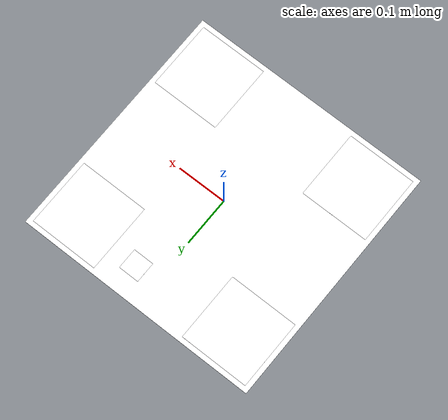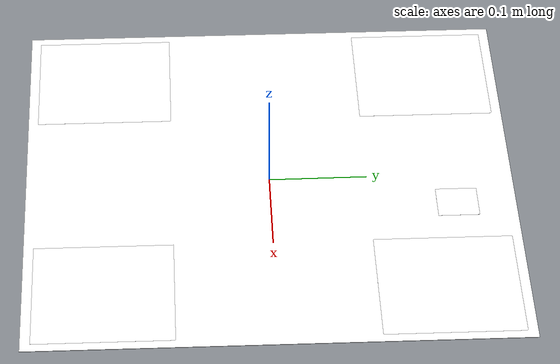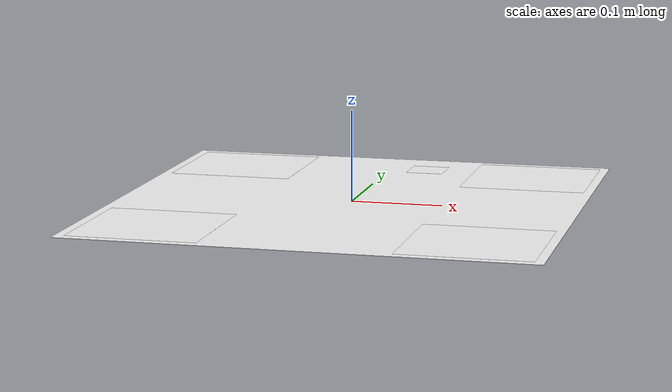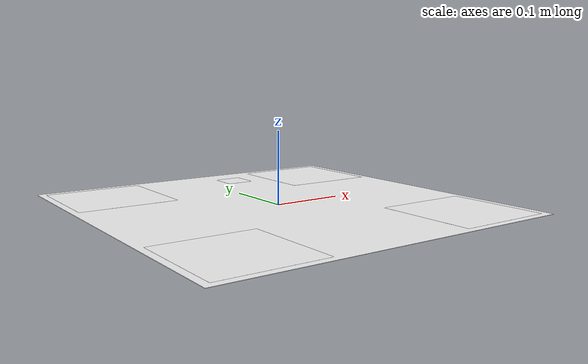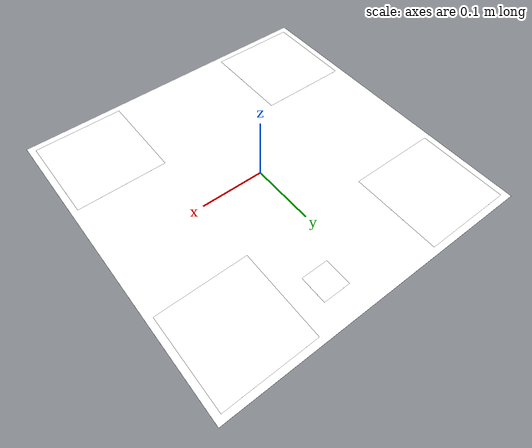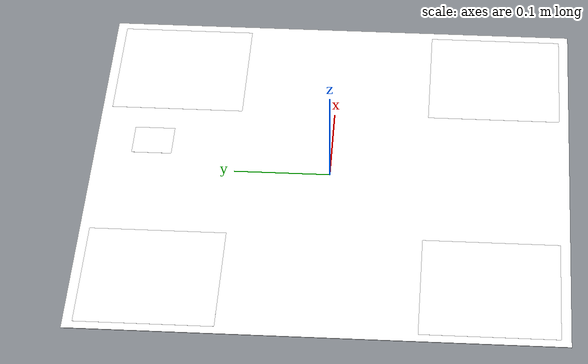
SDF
<?xml version="1.0" encoding="UTF-8"?>
<sdf version='1.9'>
  <model name='arucotag'>
    <static>true</static>
    <pose>0 0 0.001 0 0 0</pose>
    <link name='base'>
      <visual name='background_visual'>
        <geometry>
          <plane>
            <normal>0 0 1</normal>
            <size>0.5 0.5</size>
          </plane>
        </geometry>
        <material>
          <diffuse>1 1 1 1</diffuse>
          <specular>0.2 0.2 0.2 1</specular>
        </material>
      </visual>
      <visual name='tag_0_visual'>
        <pose>0.17 0.17 0.0002 0 0 0</pose>
        <geometry>
          <plane>
            <normal>0 0 1</normal>
            <size>0.14 0.14</size>
          </plane>
        </geometry>
        <material>
          <diffuse>1 1 1 1</diffuse>
          <specular>0.4 0.4 0.4 1</specular>
          <pbr>
            <metal>
              <albedo_map>model://arucotag/aruco_0.png</albedo_map>
            </metal>
          </pbr>
        </material>
      </visual>
      <visual name='tag_1_visual'>
        <pose>-0.17 0.17 0.0002 0 0 0</pose>
        <geometry>
          <plane>
            <normal>0 0 1</normal>
            <size>0.14 0.14</size>
          </plane>
        </geometry>
        <material>
          <diffuse>1 1 1 1</diffuse>
          <specular>0.4 0.4 0.4 1</specular>
          <pbr>
            <metal>
              <albedo_map>model://arucotag/aruco_1.png</albedo_map>
            </metal>
          </pbr>
        </material>
      </visual>
      <visual name='tag_2_visual'>
        <pose>-0.17 -0.17 0.0002 0 0 0</pose>
        <geometry>
          <plane>
            <normal>0 0 1</normal>
            <size>0.14 0.14</size>
          </plane>
        </geometry>
        <material>
          <diffuse>1 1 1 1</diffuse>
          <specular>0.4 0.4 0.4 1</specular>
          <pbr>
            <metal>
              <albedo_map>model://arucotag/aruco_2.png</albedo_map>
            </metal>
          </pbr>
        </material>
      </visual>
      <visual name='tag_3_visual'>
        <pose>0.17 -0.17 0.0002 0 0 0</pose>
        <geometry>
          <plane>
            <normal>0 0 1</normal>
            <size>0.14 0.14</size>
          </plane>
        </geometry>
        <material>
          <diffuse>1 1 1 1</diffuse>
          <specular>0.4 0.4 0.4 1</specular>
          <pbr>
            <metal>
              <albedo_map>model://arucotag/aruco_3.png</albedo_map>
            </metal>
          </pbr>
        </material>
      </visual>
      <visual name='tag_4_visual'>
        <pose>0.0 0.11 0.0002 0 0 0</pose>
        <geometry>
          <plane>
            <normal>0 0 1</normal>
            <size>0.07 0.07</size>
          </plane>
        </geometry>
        <material>
          <diffuse>1 1 1 1</diffuse>
          <specular>0.4 0.4 0.4 1</specular>
          <pbr>
            <metal>
              <albedo_map>model://arucotag/aruco_4.png</albedo_map>
            </metal>
          </pbr>
        </material>
      </visual>
      <visual name='tag_5_visual'>
        <pose>-0.11 0.0 0.0002 0 0 0</pose>
        <geometry>
          <plane>
            <normal>0 0 1</normal>
            <size>0.07 0.07</size>
          </plane>
        </geometry>
        <material>
          <diffuse>1 1 1 1</diffuse>
          <specular>0.4 0.4 0.4 1</specular>
          <pbr>
            <metal>
              <albedo_map>model://arucotag/aruco_5.png</albedo_map>
            </metal>
          </pbr>
        </material>
      </visual>
      <visual name='tag_6_visual'>
        <pose>0.0 -0.11 0.0002 0 0 0</pose>
        <geometry>
          <plane>
            <normal>0 0 1</normal>
            <size>0.07 0.07</size>
          </plane>
        </geometry>
        <material>
          <diffuse>1 1 1 1</diffuse>
          <specular>0.4 0.4 0.4 1</specular>
          <pbr>
            <metal>
              <albedo_map>model://arucotag/aruco_6.png</albedo_map>
            </metal>
          </pbr>
        </material>
      </visual>
      <visual name='tag_7_visual'>
        <pose>0.11 0.0 0.0002 0 0 0</pose>
        <geometry>
          <plane>
            <normal>0 0 1</normal>
            <size>0.07 0.07</size>
          </plane>
        </geometry>
        <material>
          <diffuse>1 1 1 1</diffuse>
          <specular>0.4 0.4 0.4 1</specular>
          <pbr>
            <metal>
              <albedo_map>model://arucotag/aruco_7.png</albedo_map>
            </metal>
          </pbr>
        </material>
      </visual>
      <visual name='tag_8_visual'>
        <pose>0.0 0.045 0.0002 0 0 0</pose>
        <geometry>
          <plane>
            <normal>0 0 1</normal>
            <size>0.025 0.025</size>
          </plane>
        </geometry>
        <material>
          <diffuse>1 1 1 1</diffuse>
          <specular>0.4 0.4 0.4 1</specular>
          <pbr>
            <metal>
              <albedo_map>model://arucotag/aruco_8.png</albedo_map>
            </metal>
          </pbr>
        </material>
      </visual>
      <visual name='tag_9_visual'>
        <pose>-0.045 0.0 0.0002 0 0 0</pose>
        <geometry>
          <plane>
            <normal>0 0 1</normal>
            <size>0.025 0.025</size>
          </plane>
        </geometry>
        <material>
          <diffuse>1 1 1 1</diffuse>
          <specular>0.4 0.4 0.4 1</specular>
          <pbr>
            <metal>
              <albedo_map>model://arucotag/aruco_9.png</albedo_map>
            </metal>
          </pbr>
        </material>
      </visual>
      <visual name='tag_10_visual'>
        <pose>0.0 -0.045 0.0002 0 0 0</pose>
        <geometry>
          <plane>
            <normal>0 0 1</normal>
            <size>0.025 0.025</size>
          </plane>
        </geometry>
        <material>
          <diffuse>1 1 1 1</diffuse>
          <specular>0.4 0.4 0.4 1</specular>
          <pbr>
            <metal>
              <albedo_map>model://arucotag/aruco_10.png</albedo_map>
            </metal>
          </pbr>
        </material>
      </visual>
      <visual name='tag_11_visual'>
        <pose>0.045 0.0 0.0002 0 0 0</pose>
        <geometry>
          <plane>
            <normal>0 0 1</normal>
            <size>0.025 0.025</size>
          </plane>
        </geometry>
        <material>
          <diffuse>1 1 1 1</diffuse>
          <specular>0.4 0.4 0.4 1</specular>
          <pbr>
            <metal>
              <albedo_map>model://arucotag/aruco_11.png</albedo_map>
            </metal>
          </pbr>
        </material>
      </visual>
      <visual name='tag_12_visual'>
        <pose>0.0 0.0 0.0002 0 0 0</pose>
        <geometry>
          <plane>
            <normal>0 0 1</normal>
            <size>0.018 0.018</size>
          </plane>
        </geometry>
        <material>
          <diffuse>1 1 1 1</diffuse>
          <specular>0.4 0.4 0.4 1</specular>
          <pbr>
            <metal>
              <albedo_map>model://arucotag/aruco_12.png</albedo_map>
            </metal>
          </pbr>
        </material>
      </visual>
      <!-- Small, flat drawing of the positive board axes.  It sits in the
           marker-free gap between the two large +Y-side tags. -->
      <visual name='board_positive_axes_drawing'>
        <pose>0.045 0.190 0.0005 0 0 0</pose>
        <geometry>
          <plane>
            <normal>0 0 1</normal>
            <size>0.042 0.042</size>
          </plane>
        </geometry>
        <material>
          <diffuse>1 1 1 1</diffuse>
          <specular>0 0 0 1</specular>
          <pbr>
            <metal>
              <albedo_map>model://arucotag/board_axes_xy.png</albedo_map>
            </metal>
          </pbr>
        </material>
      </visual>
    </link>
  </model>
</sdf>
